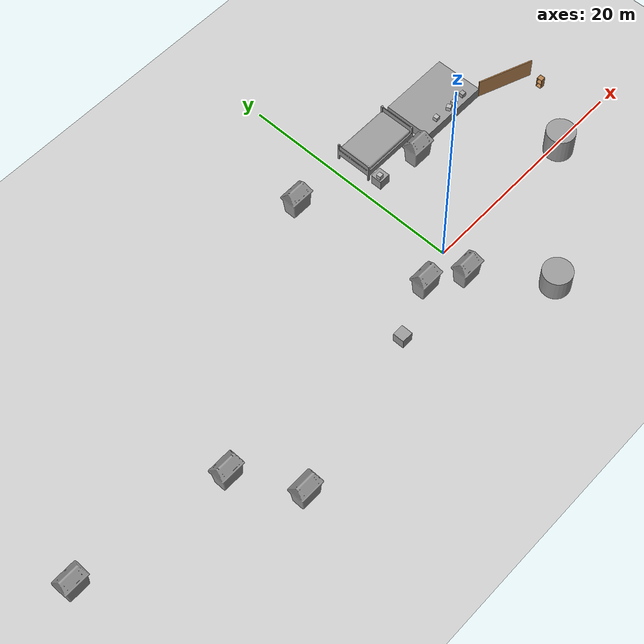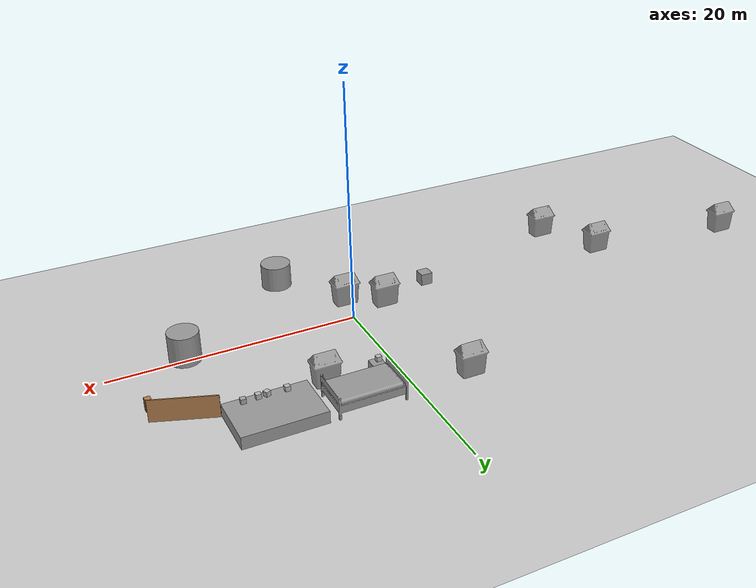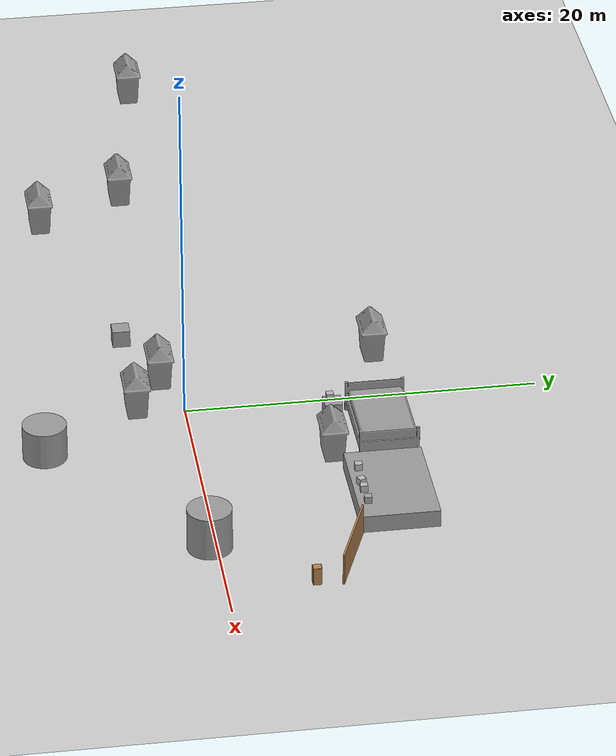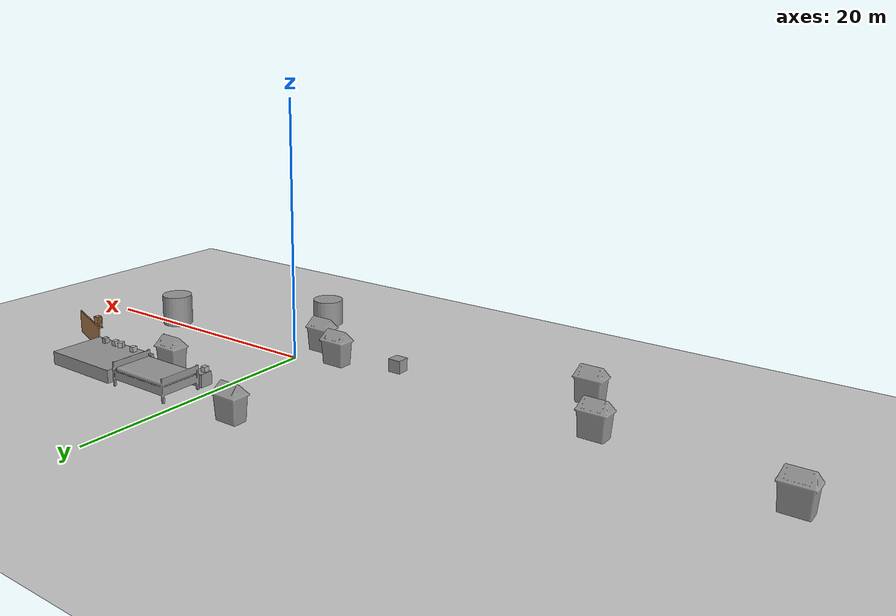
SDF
<sdf version="1.7">
 <world name="default">
  <model name="ground_plane">
   <static>1</static>
   <link name="link">
    <collision name="collision">
     <geometry><plane><normal>0 0 1</normal><size>100 100</size></plane></geometry>
     <surface>
      <contact><collide_bitmask>65535</collide_bitmask></contact>
      <friction><ode><mu>100</mu><mu2>50</mu2></ode></friction>
     </surface>
    </collision>
    <visual name="visual">
     <cast_shadows>0</cast_shadows>
     <geometry><plane><normal>0 0 1</normal><size>100 100</size></plane></geometry>
     <material>
      <script><uri>file://media/materials/scripts/gazebo.material</uri><name>Gazebo/Grey</name></script>
     </material>
    </visual>
   </link>
  </model>
  <model name="tree">
   <link name="link_12">
    <inertial>
     <mass>1</mass>
     <inertia>
      <ixx>0.166667</ixx>
      <ixy>0</ixy>
      <ixz>0</ixz>
      <iyy>0.166667</iyy>
      <iyz>0</iyz>
      <izz>0.166667</izz>
     </inertia>
    </inertial>
    <pose>2.99776 21.1634 0 0 -0 0</pose>
    <visual name="visual">
     <geometry>
      <mesh><uri>/home/teera/dev_ws/src/tratsah/meshes/dae/trash_can.dae</uri><scale>1 1 1</scale></mesh>
     </geometry>
     <material>
      <lighting>1</lighting>
      <script><uri>file://media/materials/scripts/gazebo.material</uri><name>Gazebo/Grey</name></script>
      <shader type="pixel"/>
     </material>
    </visual>
    <collision name="collision">
     <geometry>
      <mesh><uri>/home/teera/dev_ws/src/tratsah/meshes/dae/trash_can.dae</uri><scale>1 1 1</scale></mesh>
     </geometry>
     <surface>
      <friction>
       <ode><mu>1</mu><mu2>1</mu2><fdir1>0 0 0</fdir1><slip1>0</slip1><slip2>0</slip2></ode>
       <torsional>
        <coefficient>1</coefficient>
        <patch_radius>0</patch_radius>
        <surface_radius>0</surface_radius>
        <use_patch_radius>1</use_patch_radius>
        <ode><slip>0</slip></ode>
       </torsional>
      </friction>
      <bounce><restitution_coefficient>0</restitution_coefficient><threshold>1e+06</threshold></bounce>
      <contact>
       <collide_without_contact>0</collide_without_contact>
       <collide_without_contact_bitmask>1</collide_without_contact_bitmask>
       <collide_bitmask>1</collide_bitmask>
       <ode>
        <soft_cfm>0</soft_cfm>
        <soft_erp>0.2</soft_erp>
        <kp>1e+13</kp>
        <kd>1</kd>
        <max_vel>0.01</max_vel>
        <min_depth>0</min_depth>
       </ode>
       <bullet>
        <split_impulse>1</split_impulse>
        <split_impulse_penetration_threshold>-0.01</split_impulse_penetration_threshold>
        <soft_cfm>0</soft_cfm>
        <soft_erp>0.2</soft_erp>
        <kp>1e+13</kp>
        <kd>1</kd>
       </bullet>
      </contact>
     </surface>
    </collision>
   </link>
   <model name="trash_can">
    <link name="link_12">
     <inertial>
      <mass>1</mass>
      <inertia>
       <ixx>0.166667</ixx>
       <ixy>0</ixy>
       <ixz>0</ixz>
       <iyy>0.166667</iyy>
       <iyz>0</iyz>
       <izz>0.166667</izz>
      </inertia>
     </inertial>
     <pose>4e-06 2.8e-05 0 0 -0 0</pose>
     <visual name="visual">
      <geometry>
       <mesh><uri>/home/teera/dev_ws/src/tratsah/meshes/dae/trash_can.dae</uri><scale>1 1 1</scale></mesh>
      </geometry>
      <material>
       <lighting>1</lighting>
       <script><uri>file://media/materials/scripts/gazebo.material</uri><name>Gazebo/Grey</name></script>
       <shader type="pixel"/>
      </material>
     </visual>
     <collision name="collision">
      <geometry>
       <mesh><uri>/home/teera/dev_ws/src/tratsah/meshes/dae/trash_can.dae</uri><scale>1 1 1</scale></mesh>
      </geometry>
      <surface>
       <friction>
        <ode><mu>1</mu><mu2>1</mu2><fdir1>0 0 0</fdir1><slip1>0</slip1><slip2>0</slip2></ode>
        <torsional>
         <coefficient>1</coefficient>
         <patch_radius>0</patch_radius>
         <surface_radius>0</surface_radius>
         <use_patch_radius>1</use_patch_radius>
         <ode><slip>0</slip></ode>
        </torsional>
       </friction>
       <bounce><restitution_coefficient>0</restitution_coefficient><threshold>1e+06</threshold></bounce>
       <contact>
        <collide_without_contact>0</collide_without_contact>
        <collide_without_contact_bitmask>1</collide_without_contact_bitmask>
        <collide_bitmask>1</collide_bitmask>
        <ode>
         <soft_cfm>0</soft_cfm>
         <soft_erp>0.2</soft_erp>
         <kp>1e+13</kp>
         <kd>1</kd>
         <max_vel>0.01</max_vel>
         <min_depth>0</min_depth>
        </ode>
        <bullet>
         <split_impulse>1</split_impulse>
         <split_impulse_penetration_threshold>-0.01</split_impulse_penetration_threshold>
         <soft_cfm>0</soft_cfm>
         <soft_erp>0.2</soft_erp>
         <kp>1e+13</kp>
         <kd>1</kd>
        </bullet>
       </contact>
      </surface>
     </collision>
    </link>
    <static>0</static>
    <pose>13.0667 17.3666 0 0 -0 0</pose>
   </model>
   <model name="trash_can_0">
    <link name="link_12">
     <inertial>
      <mass>1</mass>
      <inertia>
       <ixx>0.166667</ixx>
       <ixy>0</ixy>
       <ixz>0</ixz>
       <iyy>0.166667</iyy>
       <iyz>0</iyz>
       <izz>0.166667</izz>
      </inertia>
     </inertial>
     <pose>4e-06 2.8e-05 0 0 -0 0</pose>
     <visual name="visual">
      <geometry>
       <mesh><uri>/home/teera/dev_ws/src/tratsah/meshes/dae/trash_can.dae</uri><scale>1 1 1</scale></mesh>
      </geometry>
      <material>
       <lighting>1</lighting>
       <script><uri>file://media/materials/scripts/gazebo.material</uri><name>Gazebo/Grey</name></script>
       <shader type="pixel"/>
      </material>
     </visual>
     <collision name="collision">
      <geometry>
       <mesh><uri>/home/teera/dev_ws/src/tratsah/meshes/dae/trash_can.dae</uri><scale>1 1 1</scale></mesh>
      </geometry>
      <surface>
       <friction>
        <ode><mu>1</mu><mu2>1</mu2><fdir1>0 0 0</fdir1><slip1>0</slip1><slip2>0</slip2></ode>
        <torsional>
         <coefficient>1</coefficient>
         <patch_radius>0</patch_radius>
         <surface_radius>0</surface_radius>
         <use_patch_radius>1</use_patch_radius>
         <ode><slip>0</slip></ode>
        </torsional>
       </friction>
       <bounce><restitution_coefficient>0</restitution_coefficient><threshold>1e+06</threshold></bounce>
       <contact>
        <collide_without_contact>0</collide_without_contact>
        <collide_without_contact_bitmask>1</collide_without_contact_bitmask>
        <collide_bitmask>1</collide_bitmask>
        <ode>
         <soft_cfm>0</soft_cfm>
         <soft_erp>0.2</soft_erp>
         <kp>1e+13</kp>
         <kd>1</kd>
         <max_vel>0.01</max_vel>
         <min_depth>0</min_depth>
        </ode>
        <bullet>
         <split_impulse>1</split_impulse>
         <split_impulse_penetration_threshold>-0.01</split_impulse_penetration_threshold>
         <soft_cfm>0</soft_cfm>
         <soft_erp>0.2</soft_erp>
         <kp>1e+13</kp>
         <kd>1</kd>
        </bullet>
       </contact>
      </surface>
     </collision>
    </link>
    <static>0</static>
    <pose>-14.3091 3.77436 0 0 -0 0</pose>
   </model>
   <model name="trash_can_1">
    <link name="link_12">
     <inertial>
      <mass>1</mass>
      <inertia>
       <ixx>0.166667</ixx>
       <ixy>0</ixy>
       <ixz>0</ixz>
       <iyy>0.166667</iyy>
       <iyz>0</iyz>
       <izz>0.166667</izz>
      </inertia>
     </inertial>
     <pose>4e-06 2.8e-05 0 0 -0 0</pose>
     <visual name="visual">
      <geometry>
       <mesh><uri>/home/teera/dev_ws/src/tratsah/meshes/dae/trash_can.dae</uri><scale>1 1 1</scale></mesh>
      </geometry>
      <material>
       <lighting>1</lighting>
       <script><uri>file://media/materials/scripts/gazebo.material</uri><name>Gazebo/Grey</name></script>
       <shader type="pixel"/>
      </material>
     </visual>
     <collision name="collision">
      <geometry>
       <mesh><uri>/home/teera/dev_ws/src/tratsah/meshes/dae/trash_can.dae</uri><scale>1 1 1</scale></mesh>
      </geometry>
      <surface>
       <friction>
        <ode><mu>1</mu><mu2>1</mu2><fdir1>0 0 0</fdir1><slip1>0</slip1><slip2>0</slip2></ode>
        <torsional>
         <coefficient>1</coefficient>
         <patch_radius>0</patch_radius>
         <surface_radius>0</surface_radius>
         <use_patch_radius>1</use_patch_radius>
         <ode><slip>0</slip></ode>
        </torsional>
       </friction>
       <bounce><restitution_coefficient>0</restitution_coefficient><threshold>1e+06</threshold></bounce>
       <contact>
        <collide_without_contact>0</collide_without_contact>
        <collide_without_contact_bitmask>1</collide_without_contact_bitmask>
        <collide_bitmask>1</collide_bitmask>
        <ode>
         <soft_cfm>0</soft_cfm>
         <soft_erp>0.2</soft_erp>
         <kp>1e+13</kp>
         <kd>1</kd>
         <max_vel>0.01</max_vel>
         <min_depth>0</min_depth>
        </ode>
        <bullet>
         <split_impulse>1</split_impulse>
         <split_impulse_penetration_threshold>-0.01</split_impulse_penetration_threshold>
         <soft_cfm>0</soft_cfm>
         <soft_erp>0.2</soft_erp>
         <kp>1e+13</kp>
         <kd>1</kd>
        </bullet>
       </contact>
      </surface>
     </collision>
    </link>
    <static>0</static>
    <pose>7.06906 7.11266 0 0 -0 0</pose>
   </model>
   <model name="trash_can_2">
    <link name="link_12">
     <inertial>
      <mass>1</mass>
      <inertia>
       <ixx>0.166667</ixx>
       <ixy>0</ixy>
       <ixz>0</ixz>
       <iyy>0.166667</iyy>
       <iyz>0</iyz>
       <izz>0.166667</izz>
      </inertia>
     </inertial>
     <pose>4e-06 2.8e-05 0 0 -0 0</pose>
     <visual name="visual">
      <geometry>
       <mesh><uri>/home/teera/dev_ws/src/tratsah/meshes/dae/trash_can.dae</uri><scale>1 1 1</scale></mesh>
      </geometry>
      <material>
       <lighting>1</lighting>
       <script><uri>file://media/materials/scripts/gazebo.material</uri><name>Gazebo/Grey</name></script>
       <shader type="pixel"/>
      </material>
     </visual>
     <collision name="collision">
      <geometry>
       <mesh><uri>/home/teera/dev_ws/src/tratsah/meshes/dae/trash_can.dae</uri><scale>1 1 1</scale></mesh>
      </geometry>
      <surface>
       <friction>
        <ode><mu>1</mu><mu2>1</mu2><fdir1>0 0 0</fdir1><slip1>0</slip1><slip2>0</slip2></ode>
        <torsional>
         <coefficient>1</coefficient>
         <patch_radius>0</patch_radius>
         <surface_radius>0</surface_radius>
         <use_patch_radius>1</use_patch_radius>
         <ode><slip>0</slip></ode>
        </torsional>
       </friction>
       <bounce><restitution_coefficient>0</restitution_coefficient><threshold>1e+06</threshold></bounce>
       <contact>
        <collide_without_contact>0</collide_without_contact>
        <collide_without_contact_bitmask>1</collide_without_contact_bitmask>
        <collide_bitmask>1</collide_bitmask>
        <ode>
         <soft_cfm>0</soft_cfm>
         <soft_erp>0.2</soft_erp>
         <kp>1e+13</kp>
         <kd>1</kd>
         <max_vel>0.01</max_vel>
         <min_depth>0</min_depth>
        </ode>
        <bullet>
         <split_impulse>1</split_impulse>
         <split_impulse_penetration_threshold>-0.01</split_impulse_penetration_threshold>
         <soft_cfm>0</soft_cfm>
         <soft_erp>0.2</soft_erp>
         <kp>1e+13</kp>
         <kd>1</kd>
        </bullet>
       </contact>
      </surface>
     </collision>
    </link>
    <static>0</static>
    <pose>-17.0093 8.86572 0 0 -0 0</pose>
   </model>
   <model name="trash_can_3">
    <link name="link_12">
     <inertial>
      <mass>1</mass>
      <inertia>
       <ixx>0.166667</ixx>
       <ixy>0</ixy>
       <ixz>0</ixz>
       <iyy>0.166667</iyy>
       <iyz>0</iyz>
       <izz>0.166667</izz>
      </inertia>
     </inertial>
     <pose>4e-06 2.8e-05 0 0 -0 0</pose>
     <visual name="visual">
      <geometry>
       <mesh><uri>/home/teera/dev_ws/src/tratsah/meshes/dae/trash_can.dae</uri><scale>1 1 1</scale></mesh>
      </geometry>
      <material>
       <lighting>1</lighting>
       <script><uri>file://media/materials/scripts/gazebo.material</uri><name>Gazebo/Grey</name></script>
       <shader type="pixel"/>
      </material>
     </visual>
     <collision name="collision">
      <geometry>
       <mesh><uri>/home/teera/dev_ws/src/tratsah/meshes/dae/trash_can.dae</uri><scale>1 1 1</scale></mesh>
      </geometry>
      <surface>
       <friction>
        <ode><mu>1</mu><mu2>1</mu2><fdir1>0 0 0</fdir1><slip1>0</slip1><slip2>0</slip2></ode>
        <torsional>
         <coefficient>1</coefficient>
         <patch_radius>0</patch_radius>
         <surface_radius>0</surface_radius>
         <use_patch_radius>1</use_patch_radius>
         <ode><slip>0</slip></ode>
        </torsional>
       </friction>
       <bounce><restitution_coefficient>0</restitution_coefficient><threshold>1e+06</threshold></bounce>
       <contact>
        <collide_without_contact>0</collide_without_contact>
        <collide_without_contact_bitmask>1</collide_without_contact_bitmask>
        <collide_bitmask>1</collide_bitmask>
        <ode>
         <soft_cfm>0</soft_cfm>
         <soft_erp>0.2</soft_erp>
         <kp>1e+13</kp>
         <kd>1</kd>
         <max_vel>0.01</max_vel>
         <min_depth>0</min_depth>
        </ode>
        <bullet>
         <split_impulse>1</split_impulse>
         <split_impulse_penetration_threshold>-0.01</split_impulse_penetration_threshold>
         <soft_cfm>0</soft_cfm>
         <soft_erp>0.2</soft_erp>
         <kp>1e+13</kp>
         <kd>1</kd>
        </bullet>
       </contact>
      </surface>
     </collision>
    </link>
    <static>0</static>
    <pose>4.20413 8.77388 0 0 -0 0</pose>
   </model>
   <model name="trash_can_4">
    <link name="link_12">
     <inertial>
      <mass>1</mass>
      <inertia>
       <ixx>0.166667</ixx>
       <ixy>0</ixy>
       <ixz>0</ixz>
       <iyy>0.166667</iyy>
       <iyz>0</iyz>
       <izz>0.166667</izz>
      </inertia>
     </inertial>
     <pose>4e-06 2.8e-05 0 0 -0 0</pose>
     <visual name="visual">
      <geometry>
       <mesh><uri>/home/teera/dev_ws/src/tratsah/meshes/dae/trash_can.dae</uri><scale>1 1 1</scale></mesh>
      </geometry>
      <material>
       <lighting>1</lighting>
       <script><uri>file://media/materials/scripts/gazebo.material</uri><name>Gazebo/Grey</name></script>
       <shader type="pixel"/>
      </material>
     </visual>
     <collision name="collision">
      <geometry>
       <mesh><uri>/home/teera/dev_ws/src/tratsah/meshes/dae/trash_can.dae</uri><scale>1 1 1</scale></mesh>
      </geometry>
      <surface>
       <friction>
        <ode><mu>1</mu><mu2>1</mu2><fdir1>0 0 0</fdir1><slip1>0</slip1><slip2>0</slip2></ode>
        <torsional>
         <coefficient>1</coefficient>
         <patch_radius>0</patch_radius>
         <surface_radius>0</surface_radius>
         <use_patch_radius>1</use_patch_radius>
         <ode><slip>0</slip></ode>
        </torsional>
       </friction>
       <bounce><restitution_coefficient>0</restitution_coefficient><threshold>1e+06</threshold></bounce>
       <contact>
        <collide_without_contact>0</collide_without_contact>
        <collide_without_contact_bitmask>1</collide_without_contact_bitmask>
        <collide_bitmask>1</collide_bitmask>
        <ode>
         <soft_cfm>0</soft_cfm>
         <soft_erp>0.2</soft_erp>
         <kp>1e+13</kp>
         <kd>1</kd>
         <max_vel>0.01</max_vel>
         <min_depth>0</min_depth>
        </ode>
        <bullet>
         <split_impulse>1</split_impulse>
         <split_impulse_penetration_threshold>-0.01</split_impulse_penetration_threshold>
         <soft_cfm>0</soft_cfm>
         <soft_erp>0.2</soft_erp>
         <kp>1e+13</kp>
         <kd>1</kd>
        </bullet>
       </contact>
      </surface>
     </collision>
    </link>
    <static>0</static>
    <pose>-29.8163 10.8728 0 0 -0 0</pose>
   </model>
   <static>0</static>
   <pose>-7.52959 -9.8007 0.007877 -0 -0 -0</pose>
  </model>
  <model name="blue_box">
   <model name="blue_box">
    <link name="new_link">
     <visual name="top_visual">
      <geometry><mesh><uri>model://blue_box/meshes/blue_box.dae</uri></mesh></geometry>
     </visual>
     <collision name="collision">
      <geometry><box><size>0.4 0.4 0.4</size></box></geometry>
      <origin xyz="0 0 0" rpy="0 0 0"/>
     </collision>
     <inertial>
      <mass>1</mass>
      <inertia><ixx>0.01</ixx><ixy>0</ixy><ixz>0</ixz><iyy>0.01</iyy><iyz>0</iyz><izz>0.01</izz></inertia>
     </inertial>
    </link>
   </model>
   <static>0</static>
   <pose>1.50465 8.00989 1.19999 3.1e-05 -2.1e-05 0.044766</pose>
  </model>
  <model name="blue_box_0">
   <link name="new_link">
    <visual name="top_visual">
     <geometry><mesh><uri>model://blue_box/meshes/blue_box.dae</uri></mesh></geometry>
    </visual>
    <collision name="collision">
     <geometry><box><size>0.4 0.4 0.4</size></box></geometry>
     <origin xyz="0 0 0" rpy="0 0 0"/>
    </collision>
    <inertial>
     <mass>1</mass>
     <inertia><ixx>0.01</ixx><ixy>0</ixy><ixz>0</ixz><iyy>0.01</iyy><iyz>0</iyz><izz>0.01</izz></inertia>
    </inertial>
   </link>
   <pose>8.87719 8.46366 1.19999 4e-06 -0 0.021973</pose>
  </model>
  <model name="green_box_0">
   <link name="new_link">
    <visual name="top_visual">
     <geometry><mesh><uri>model://green_box/meshes/green_box.dae</uri><scale>1 1 1</scale></mesh></geometry>
    </visual>
    <collision name="collision">
     <geometry><box><size>0.4 0.4 0.4</size></box></geometry>
     <origin xyz="0 0 0" rpy="0 0 0"/>
    </collision>
    <inertial>
     <mass>1</mass>
     <inertia><ixx>0.01</ixx><ixy>0</ixy><ixz>0</ixz><iyy>0.01</iyy><iyz>0</iyz><izz>0.01</izz></inertia>
    </inertial>
   </link>
   <pose>10.3677 8.40985 1.19999 3e-06 1e-06 0.408041</pose>
  </model>
  <model name="green_box_1">
   <link name="new_link">
    <visual name="top_visual">
     <geometry><mesh><uri>model://red_box/meshes/red_box.dae</uri></mesh></geometry>
    </visual>
    <collision name="collision">
     <geometry><box><size>0.4 0.4 0.4</size></box></geometry>
     <origin xyz="0 0 0" rpy="0 0 0"/>
    </collision>
    <inertial>
     <mass>1</mass>
     <inertia><ixx>0.01</ixx><ixy>0</ixy><ixz>0</ixz><iyy>0.01</iyy><iyz>0</iyz><izz>0.01</izz></inertia>
    </inertial>
   </link>
   <pose>12.1566 8.47729 1.19999 3e-06 1e-06 -0.044323</pose>
  </model>
  <model name="blue_box_1">
   <link name="new_link">
    <visual name="top_visual">
     <geometry><mesh><uri>model://blue_box/meshes/blue_box.dae</uri></mesh></geometry>
    </visual>
    <collision name="collision">
     <geometry><box><size>0.4 0.4 0.4</size></box></geometry>
     <origin xyz="0 0 0" rpy="0 0 0"/>
    </collision>
    <inertial>
     <mass>1</mass>
     <inertia><ixx>0.01</ixx><ixy>0</ixy><ixz>0</ixz><iyy>0.01</iyy><iyz>0</iyz><izz>0.01</izz></inertia>
    </inertial>
   </link>
   <pose>11.0296 8.42743 1.19999 6e-06 -5e-06 -0.023726</pose>
  </model>
  <model name="unit_box_1">
   <link name="link">
    <inertial>
     <mass>100</mass>
     <inertia><ixx>164.686</ixx><ixy>0</ixy><ixz>0</ixz><iyy>354.534</iyy><iyz>0</iyz><izz>502.553</izz></inertia>
    </inertial>
    <visual name="visual">
     <geometry><box><size>6.44547 4.33155 1</size></box></geometry>
     <material>
      <script><name>Gazebo/Grey</name><uri>file://media/materials/scripts/gazebo.material</uri></script>
      <shader type="pixel"><normal_map>__default__</normal_map></shader>
     </material>
    </visual>
    <collision name="collision">
     <geometry><box><size>6.44547 4.33155 1</size></box></geometry>
     <surface>
      <friction>
       <ode><mu>1</mu><mu2>1</mu2><fdir1>0 0 0</fdir1><slip1>0</slip1><slip2>0</slip2></ode>
       <torsional>
        <coefficient>1</coefficient>
        <patch_radius>0</patch_radius>
        <surface_radius>0</surface_radius>
        <use_patch_radius>1</use_patch_radius>
        <ode><slip>0</slip></ode>
       </torsional>
      </friction>
      <bounce><restitution_coefficient>0</restitution_coefficient><threshold>1e+06</threshold></bounce>
      <contact>
       <collide_without_contact>0</collide_without_contact>
       <collide_without_contact_bitmask>1</collide_without_contact_bitmask>
       <collide_bitmask>1</collide_bitmask>
       <ode>
        <soft_cfm>0</soft_cfm>
        <soft_erp>0.2</soft_erp>
        <kp>1e+13</kp>
        <kd>1</kd>
        <max_vel>0.01</max_vel>
        <min_depth>0</min_depth>
       </ode>
       <bullet>
        <split_impulse>1</split_impulse>
        <split_impulse_penetration_threshold>-0.01</split_impulse_penetration_threshold>
        <soft_cfm>0</soft_cfm>
        <soft_erp>0.2</soft_erp>
        <kp>1e+13</kp>
        <kd>1</kd>
       </bullet>
      </contact>
     </surface>
    </collision>
   </link>
   <static>0</static>
   <pose>10.3977 10.0717 0.499993 3e-06 -0 6e-06</pose>
  </model>
  <model name="unit_box">
   <link name="link">
    <inertial>
     <mass>50</mass>
     <inertia><ixx>8.33333</ixx><ixy>0</ixy><ixz>0</ixz><iyy>8.33333</iyy><iyz>0</iyz><izz>8.33333</izz></inertia>
    </inertial>
    <visual name="visual">
     <geometry><box><size>1 1 1</size></box></geometry>
     <material>
      <script><name>Gazebo/Grey</name><uri>file://media/materials/scripts/gazebo.material</uri></script>
      <shader type="pixel"><normal_map>__default__</normal_map></shader>
     </material>
    </visual>
    <collision name="collision">
     <geometry><box><size>1 1 1</size></box></geometry>
     <surface>
      <friction>
       <ode><mu>1</mu><mu2>1</mu2><fdir1>0 0 0</fdir1><slip1>0</slip1><slip2>0</slip2></ode>
       <torsional>
        <coefficient>1</coefficient>
        <patch_radius>0</patch_radius>
        <surface_radius>0</surface_radius>
        <use_patch_radius>1</use_patch_radius>
        <ode><slip>0</slip></ode>
       </torsional>
      </friction>
      <bounce><restitution_coefficient>0</restitution_coefficient><threshold>1e+06</threshold></bounce>
      <contact>
       <collide_without_contact>0</collide_without_contact>
       <collide_without_contact_bitmask>1</collide_without_contact_bitmask>
       <collide_bitmask>1</collide_bitmask>
       <ode>
        <soft_cfm>0</soft_cfm>
        <soft_erp>0.2</soft_erp>
        <kp>1e+13</kp>
        <kd>1</kd>
        <max_vel>0.01</max_vel>
        <min_depth>0</min_depth>
       </ode>
       <bullet>
        <split_impulse>1</split_impulse>
        <split_impulse_penetration_threshold>-0.01</split_impulse_penetration_threshold>
        <soft_cfm>0</soft_cfm>
        <soft_erp>0.2</soft_erp>
        <kp>1e+13</kp>
        <kd>1</kd>
       </bullet>
      </contact>
     </surface>
    </collision>
   </link>
   <static>0</static>
   <pose>1.69664 8.14969 0.5 0 -0 2e-06</pose>
  </model>
  <model name="unit_box_2">
   <link name="link">
    <inertial>
     <mass>50</mass>
     <inertia><ixx>8.33333</ixx><ixy>0</ixy><ixz>0</ixz><iyy>8.33333</iyy><iyz>0</iyz><izz>8.33333</izz></inertia>
    </inertial>
    <visual name="visual">
     <geometry><box><size>1 1 1</size></box></geometry>
     <material>
      <script><name>Gazebo/Grey</name><uri>file://media/materials/scripts/gazebo.material</uri></script>
      <shader type="pixel"><normal_map>__default__</normal_map></shader>
     </material>
    </visual>
    <collision name="collision">
     <geometry><box><size>1 1 1</size></box></geometry>
     <surface>
      <friction>
       <ode><mu>1</mu><mu2>1</mu2><fdir1>0 0 0</fdir1><slip1>0</slip1><slip2>0</slip2></ode>
       <torsional>
        <coefficient>1</coefficient>
        <patch_radius>0</patch_radius>
        <surface_radius>0</surface_radius>
        <use_patch_radius>1</use_patch_radius>
        <ode><slip>0</slip></ode>
       </torsional>
      </friction>
      <bounce><restitution_coefficient>0</restitution_coefficient><threshold>1e+06</threshold></bounce>
      <contact>
       <collide_without_contact>0</collide_without_contact>
       <collide_without_contact_bitmask>1</collide_without_contact_bitmask>
       <collide_bitmask>1</collide_bitmask>
       <ode>
        <soft_cfm>0</soft_cfm>
        <soft_erp>0.2</soft_erp>
        <kp>1e+13</kp>
        <kd>1</kd>
        <max_vel>0.01</max_vel>
        <min_depth>0</min_depth>
       </ode>
       <bullet>
        <split_impulse>1</split_impulse>
        <split_impulse_penetration_threshold>-0.01</split_impulse_penetration_threshold>
        <soft_cfm>0</soft_cfm>
        <soft_erp>0.2</soft_erp>
        <kp>1e+13</kp>
        <kd>1</kd>
       </bullet>
      </contact>
     </surface>
    </collision>
   </link>
   <static>0</static>
   <pose>-7.85792 -2.71407 0.5 0 -0 0</pose>
  </model>
  <model name="fence">
   <static>1</static>
   <link name="link">
    <pose>0 0 0.915 0 -0 0</pose>
    <collision name="collision"><geometry><box><size>0.1 5 1.83</size></box></geometry></collision>
    <visual name="visual">
     <cast_shadows>0</cast_shadows>
     <geometry><box><size>0.1 5 1.83</size></box></geometry>
     <material>
      <script>
       <uri>https://fuel.ignitionrobotics.org/1.0/athackst/models/fence/2/files/materials/scripts</uri>
       <uri>https://fuel.ignitionrobotics.org/1.0/athackst/models/fence/2/files/materials/textures</uri>
       <name>Fence/WoodBoarding</name>
      </script>
     </material>
    </visual>
   </link>
   <pose>15.9817 7.07432 0 0 -0 1.2101</pose>
  </model>
  <model name="BED_4">
   <link name="link_1">
    <inertial>
     <mass>100</mass>
     <inertia><ixx>10</ixx><ixy>0</ixy><ixz>0</ixz><iyy>10</iyy><iyz>0</iyz><izz>10</izz></inertia>
    </inertial>
    <pose>-1e-06 -0 0 0 -0 0</pose>
    <visual name="visual">
     <geometry>
      <mesh><uri>/home/teera/dev_ws/src/tratsah/meshes/dae/bed.dae</uri><scale>1 1 1</scale></mesh>
     </geometry>
     <material>
      <lighting>1</lighting>
      <script><uri>file://media/materials/scripts/gazebo.material</uri><name>Gazebo/Grey</name></script>
      <shader type="pixel"><normal_map>__default__</normal_map></shader>
     </material>
    </visual>
    <collision name="collision">
     <geometry>
      <mesh><uri>/home/teera/dev_ws/src/tratsah/meshes/dae/bed.dae</uri><scale>1 1 1</scale></mesh>
     </geometry>
     <surface>
      <friction>
       <ode><mu>1</mu><mu2>1</mu2><fdir1>0 0 0</fdir1><slip1>0</slip1><slip2>0</slip2></ode>
       <torsional>
        <coefficient>1</coefficient>
        <patch_radius>0</patch_radius>
        <surface_radius>0</surface_radius>
        <use_patch_radius>1</use_patch_radius>
        <ode><slip>0</slip></ode>
       </torsional>
      </friction>
      <bounce><restitution_coefficient>0</restitution_coefficient><threshold>1e+06</threshold></bounce>
      <contact>
       <collide_without_contact>0</collide_without_contact>
       <collide_without_contact_bitmask>1</collide_without_contact_bitmask>
       <collide_bitmask>1</collide_bitmask>
       <ode>
        <soft_cfm>0</soft_cfm>
        <soft_erp>0.2</soft_erp>
        <kp>1e+13</kp>
        <kd>1</kd>
        <max_vel>0.01</max_vel>
        <min_depth>0</min_depth>
       </ode>
       <bullet>
        <split_impulse>1</split_impulse>
        <split_impulse_penetration_threshold>-0.01</split_impulse_penetration_threshold>
        <soft_cfm>0</soft_cfm>
        <soft_erp>0.2</soft_erp>
        <kp>1e+13</kp>
        <kd>1</kd>
       </bullet>
      </contact>
     </surface>
    </collision>
   </link>
   <static>0</static>
   <pose>3.92096 10.825 -0.005869 -0.00033 0 0.000639</pose>
  </model>
  <model name="unit_cylinder_9">
   <link name="link">
    <inertial>
     <mass>15224.2</mass>
     <inertia><ixx>13700.4</ixx><ixy>0</ixy><ixz>0</ixz><iyy>13700.4</iyy><iyz>0</iyz><izz>11615.9</izz></inertia>
    </inertial>
    <visual name="visual">
     <geometry><cylinder><radius>1.23531</radius><length>2.49419</length></cylinder></geometry>
     <material>
      <script><name>Gazebo/Grey</name><uri>file://media/materials/scripts/gazebo.material</uri></script>
      <shader type="pixel"><normal_map>__default__</normal_map></shader>
     </material>
    </visual>
    <collision name="collision">
     <geometry><cylinder><radius>1.23531</radius><length>2.49419</length></cylinder></geometry>
     <surface>
      <friction>
       <ode><mu>1</mu><mu2>1</mu2><fdir1>0 0 0</fdir1><slip1>0</slip1><slip2>0</slip2></ode>
       <torsional>
        <coefficient>1</coefficient>
        <patch_radius>0</patch_radius>
        <surface_radius>0</surface_radius>
        <use_patch_radius>1</use_patch_radius>
        <ode><slip>0</slip></ode>
       </torsional>
      </friction>
      <bounce><restitution_coefficient>0</restitution_coefficient><threshold>1e+06</threshold></bounce>
      <contact>
       <collide_without_contact>0</collide_without_contact>
       <collide_without_contact_bitmask>1</collide_without_contact_bitmask>
       <collide_bitmask>1</collide_bitmask>
       <ode>
        <soft_cfm>0</soft_cfm>
        <soft_erp>0.2</soft_erp>
        <kp>1e+13</kp>
        <kd>1</kd>
        <max_vel>0.01</max_vel>
        <min_depth>0</min_depth>
       </ode>
       <bullet>
        <split_impulse>1</split_impulse>
        <split_impulse_penetration_threshold>-0.01</split_impulse_penetration_threshold>
        <soft_cfm>0</soft_cfm>
        <soft_erp>0.2</soft_erp>
        <kp>1e+13</kp>
        <kd>1</kd>
       </bullet>
      </contact>
     </surface>
    </collision>
   </link>
   <static>0</static>
   <pose>13.8073 -0.373374 1.2471 0 -0 0</pose>
  </model>
  <model name="unit_cylinder_10">
   <link name="link">
    <inertial>
     <mass>12978</mass>
     <inertia><ixx>9787.37</ixx><ixy>0</ixy><ixz>0</ixz><iyy>9787.37</iyy><iyz>0</iyz><izz>10013.9</izz></inertia>
    </inertial>
    <visual name="visual">
     <geometry><cylinder><radius>1.24226</radius><length>2.10242</length></cylinder></geometry>
     <material>
      <script><name>Gazebo/Grey</name><uri>file://media/materials/scripts/gazebo.material</uri></script>
      <shader type="pixel"><normal_map>__default__</normal_map></shader>
     </material>
    </visual>
    <collision name="collision">
     <geometry><cylinder><radius>1.24226</radius><length>2.10242</length></cylinder></geometry>
     <surface>
      <friction>
       <ode><mu>1</mu><mu2>1</mu2><fdir1>0 0 0</fdir1><slip1>0</slip1><slip2>0</slip2></ode>
       <torsional>
        <coefficient>1</coefficient>
        <patch_radius>0</patch_radius>
        <surface_radius>0</surface_radius>
        <use_patch_radius>1</use_patch_radius>
        <ode><slip>0</slip></ode>
       </torsional>
      </friction>
      <bounce><restitution_coefficient>0</restitution_coefficient><threshold>1e+06</threshold></bounce>
      <contact>
       <collide_without_contact>0</collide_without_contact>
       <collide_without_contact_bitmask>1</collide_without_contact_bitmask>
       <collide_bitmask>1</collide_bitmask>
       <ode>
        <soft_cfm>0</soft_cfm>
        <soft_erp>0.2</soft_erp>
        <kp>1e+13</kp>
        <kd>1</kd>
        <max_vel>0.01</max_vel>
        <min_depth>0</min_depth>
       </ode>
       <bullet>
        <split_impulse>1</split_impulse>
        <split_impulse_penetration_threshold>-0.01</split_impulse_penetration_threshold>
        <soft_cfm>0</soft_cfm>
        <soft_erp>0.2</soft_erp>
        <kp>1e+13</kp>
        <kd>1</kd>
       </bullet>
      </contact>
     </surface>
    </collision>
   </link>
   <static>0</static>
   <pose>3.57388 -8.21597 1.05121 0 -0 0</pose>
  </model>
  <model name="cabinet">
   <static>1</static>
   <link name="cabinet_bottom_plate">
    <inertial>
     <pose>0 0 -1 0 -0 0</pose>
     <inertia><ixx>2.05</ixx><ixy>0</ixy><ixz>0</ixz><iyy>2.05</iyy><iyz>0</iyz><izz>2.05</izz></inertia>
     <mass>25</mass>
    </inertial>
    <collision name="cabinet_bottom_plate_geom">
     <pose>0 0 0.01 0 -0 0</pose>
     <geometry><box><size>0.45 0.45 0.02</size></box></geometry>
    </collision>
    <visual name="cabinet_bottom_plate_geom_visual">
     <pose>0 0 0.01 0 -0 0</pose>
     <geometry><box><size>0.45 0.45 0.02</size></box></geometry>
     <material>
      <script><uri>file://media/materials/scripts/gazebo.material</uri><name>Gazebo/Wood</name></script>
     </material>
    </visual>
    <collision name="cabinet_bottom_plate_geom_cabinet_back_plate">
     <pose>0.235 0 0.51 0 -0 0</pose>
     <geometry><box><size>0.02 0.45 1.02</size></box></geometry>
    </collision>
    <visual name="cabinet_bottom_plate_geom_cabinet_back_plate_visual">
     <pose>0.235 0 0.51 0 -0 0</pose>
     <geometry><box><size>0.02 0.45 1.02</size></box></geometry>
     <material>
      <script><uri>file://media/materials/scripts/gazebo.material</uri><name>Gazebo/Wood</name></script>
     </material>
    </visual>
    <collision name="cabinet_bottom_plate_geom_cabinet_left_plate">
     <pose>0 0.235 0.51 0 -0 0</pose>
     <geometry><box><size>0.45 0.02 1.02</size></box></geometry>
    </collision>
    <visual name="cabinet_bottom_plate_geom_cabinet_left_plate_visual">
     <pose>0 0.235 0.51 0 -0 0</pose>
     <geometry><box><size>0.45 0.02 1.02</size></box></geometry>
     <material>
      <script><uri>file://media/materials/scripts/gazebo.material</uri><name>Gazebo/Wood</name></script>
     </material>
    </visual>
    <collision name="cabinet_bottom_plate_geom_cabinet_middle_plate">
     <pose>0 0 0.51 0 -0 0</pose>
     <geometry><box><size>0.45 0.45 0.02</size></box></geometry>
    </collision>
    <visual name="cabinet_bottom_plate_geom_cabinet_middle_plate_visual">
     <pose>0 0 0.51 0 -0 0</pose>
     <geometry><box><size>0.45 0.45 0.02</size></box></geometry>
     <material>
      <script><uri>file://media/materials/scripts/gazebo.material</uri><name>Gazebo/Wood</name></script>
     </material>
    </visual>
    <collision name="cabinet_bottom_plate_geom_cabinet_right_plate">
     <pose>0 -0.235 0.51 0 -0 0</pose>
     <geometry><box><size>0.45 0.02 1.02</size></box></geometry>
    </collision>
    <visual name="cabinet_bottom_plate_geom_cabinet_right_plate_visual">
     <pose>0 -0.235 0.51 0 -0 0</pose>
     <geometry><box><size>0.45 0.02 1.02</size></box></geometry>
     <material>
      <script><uri>file://media/materials/scripts/gazebo.material</uri><name>Gazebo/Wood</name></script>
     </material>
    </visual>
    <collision name="cabinet_bottom_plate_geom_cabinet_top_plate">
     <pose>0 0 1.01 0 -0 0</pose>
     <geometry><box><size>0.45 0.45 0.02</size></box></geometry>
    </collision>
    <visual name="cabinet_bottom_plate_geom_cabinet_top_plate_visual">
     <pose>0 0 1.01 0 -0 0</pose>
     <geometry><box><size>0.45 0.45 0.02</size></box></geometry>
     <material>
      <script><uri>file://media/materials/scripts/gazebo.material</uri><name>Gazebo/Wood</name></script>
     </material>
    </visual>
   </link>
   <pose>17.947 4.82292 0 0 -0 0</pose>
  </model>
 </world>
</sdf>
